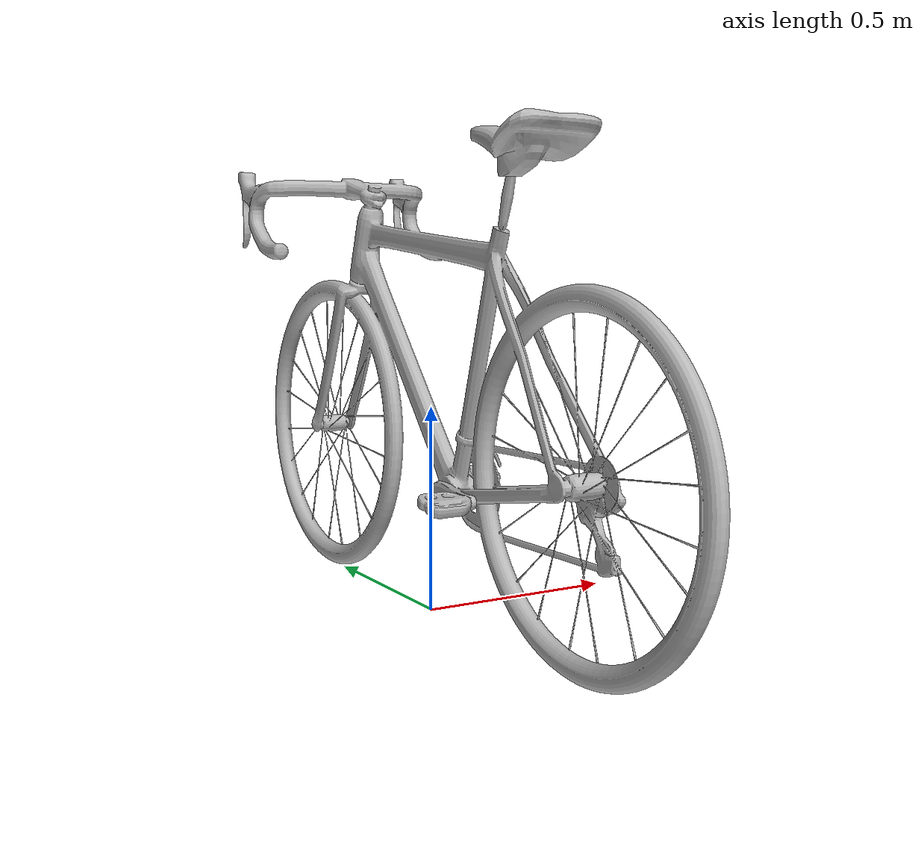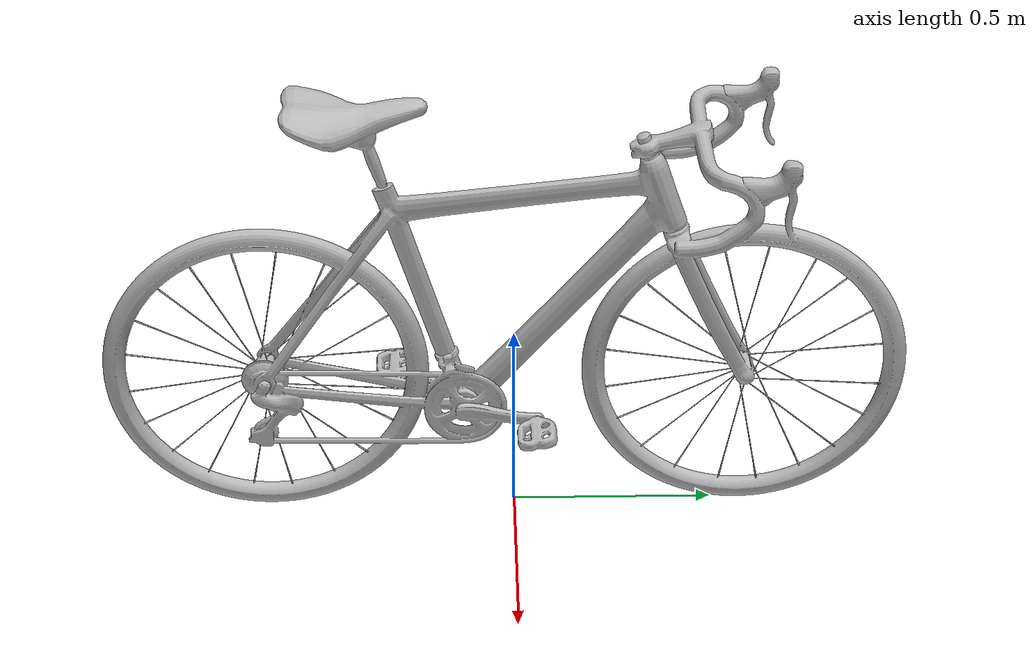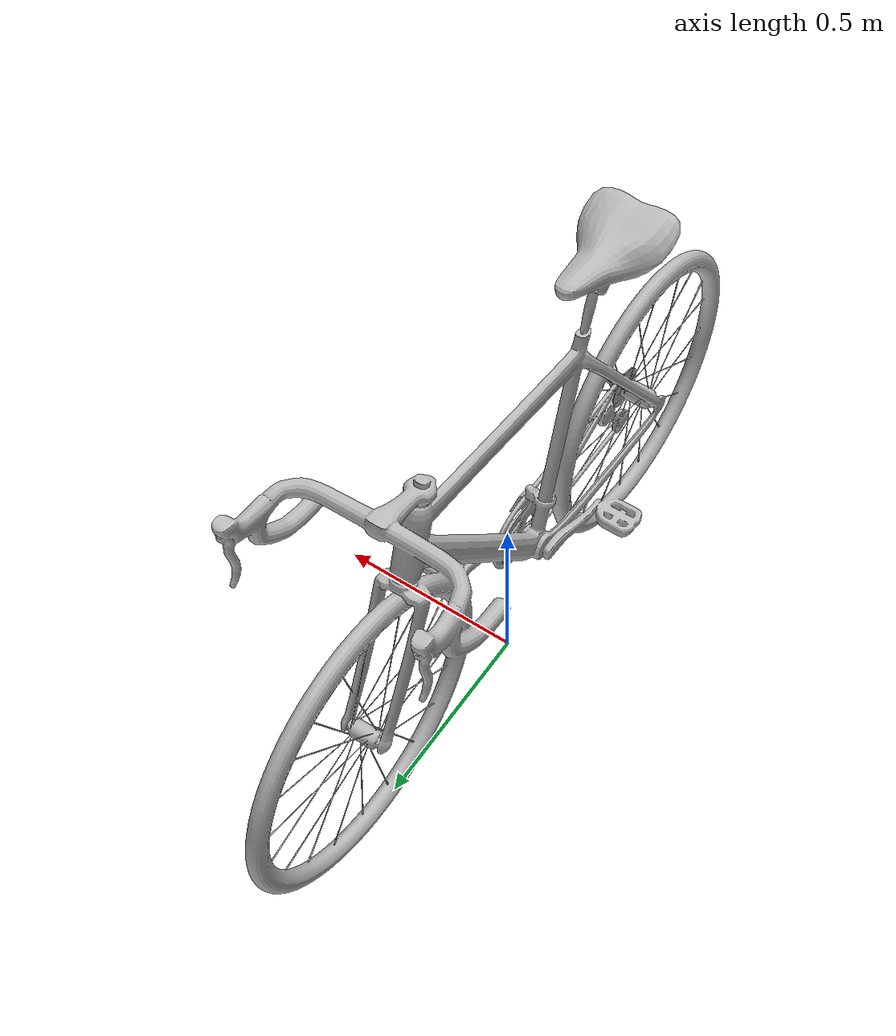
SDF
<?xml version="1.0" ?>
<sdf version="1.6">
  <model name="extra_bicycle">
    <static>true</static>
    <link name="link">
      <visual name="visual">
        <geometry>
          <mesh>
            <scale>0.01 0.01 0.01</scale>
            <uri>model://extra_bicycle/meshes/10489_bicycle_L2.dae</uri>
          </mesh>
  	    </geometry>
        <material>
          <script>
            <uri>model://extra_bicycle/materials/scripts</uri>
            <uri>model://extra_bicycle/materials/textures</uri>
            <name>extra_bicycle/image_1</name>
          </script>
        </material>
      </visual>
    </link>
  </model>
</sdf>
